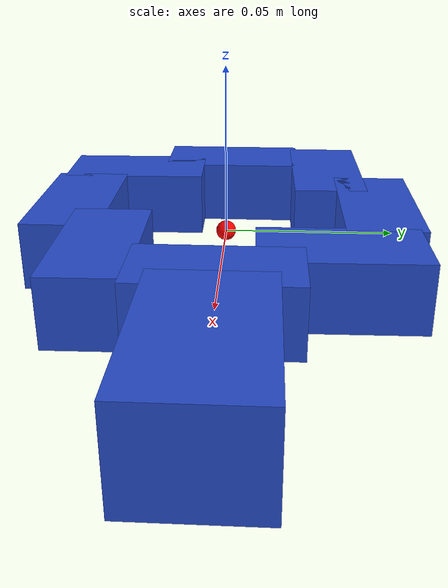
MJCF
<mujoco model="nut_blue">
  <asset>
    <texture file="../objects/textures/navy_blue.png" type="cube" name="brass-metal"/>
    <material name="bmetal"  reflectance="1.0" shininess="1.0" specular="1.0" texrepeat="1 1" texture="brass-metal" texuniform="true"/>
  </asset>
  <worldbody>
    <body>
      <body name="object">
        <geom pos="-0.04525 0 0.0" size="0.01125 0.0225 0.01" type="box" solimp="0.998 0.998 0.001" solref="0.02 1" density="100" friction="0.95 0.3 0.1" group="0" condim="4" material="bmetal" />
        <geom pos="0.04525 0 0.0" size="0.01125 0.0225 0.01" type="box" solimp="0.998 0.998 0.001" solref="0.02 1" density="100" friction="0.95 0.3 0.1" group="0" condim="4" material="bmetal" />
        <geom pos="0 -0.04525 0.0" size="0.0225 0.01125 0.01" type="box" solimp="0.998 0.998 0.001" solref="0.02 1" density="100" friction="0.95 0.3 0.1" group="0" condim="4" material="bmetal" />
        <geom pos="0 0.04525 0.0" size="0.0225 0.01125 0.01" type="box" solimp="0.998 0.998 0.001" solref="0.02 1" density="100" friction="0.95 0.3 0.1" group="0" condim="4" material="bmetal" />
        <geom pos="-0.032 -0.032 0.0" size="0.01125 0.0225 0.01" axisangle='0 0 1 0.785398' type="box" solimp="0.998 0.998 0.001" solref="0.02 1" density="100" friction="0.95 0.3 0.1" group="0" condim="4" material="bmetal" />
        <geom pos="0.032 0.032 0.0" size="0.01125 0.0225 0.01" axisangle='0 0 1 0.785398' type="box" solimp="0.998 0.998 0.001" solref="0.02 1" density="100" friction="0.95 0.3 0.1" group="0" condim="4" material="bmetal" />
        <geom pos="0.032 -0.032 0.0" size="0.0225 0.01125 0.01" axisangle='0 0 1 0.785398' type="box" solimp="0.998 0.998 0.001" solref="0.02 1" density="100" friction="0.95 0.3 0.1" group="0" condim="4" material="bmetal" />
        <geom pos="-0.032 0.032 0.0" size="0.0225 0.01125 0.01" axisangle='0 0 1 0.785398' type="box" solimp="0.998 0.998 0.001" solref="0.02 1" density="100" friction="0.95 0.3 0.1" group="0" condim="4" material="bmetal" />
        <geom pos="0.08 0 0.0" size="0.02525 0.015875 0.013" type="box" solimp="0.998 0.998 0.001" solref="0.02 1" density="100" friction="0.95 0.3 0.1" group="0" condim="4" material="bmetal" />
        <site rgba="1 0 0 1" size="0.005" pos="0.08 0 0.0" name="handle_site"/>
        <site rgba="1 0 0 1" size="0.003" pos="0 0 0" name="center_site"/>
      </body>
      <site rgba="0 0 0 0" size="0.005" pos="0 0 -0.05" name="bottom_site"/>
      <site rgba="0 0 0 0" size="0.005" pos="0 0 0.025" name="top_site"/>
      <site rgba="0 0 0 0" size="0.005" pos="0.05 0.05 0" name="horizontal_radius_site"/>
    </body>
  </worldbody>
</mujoco>
